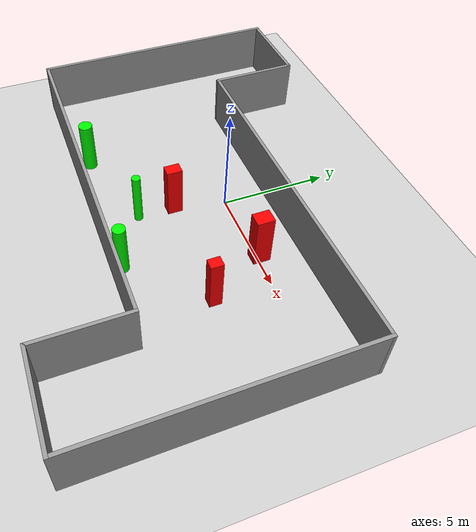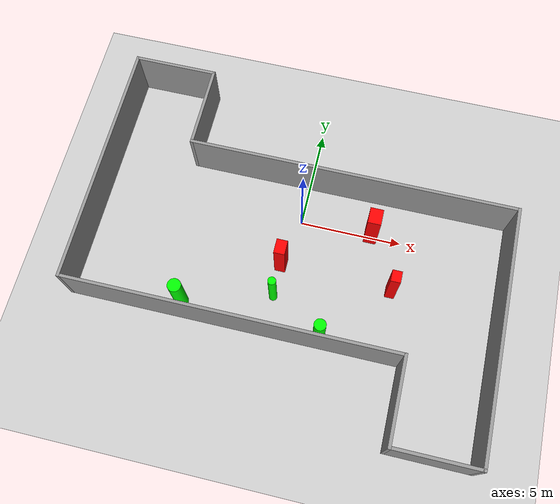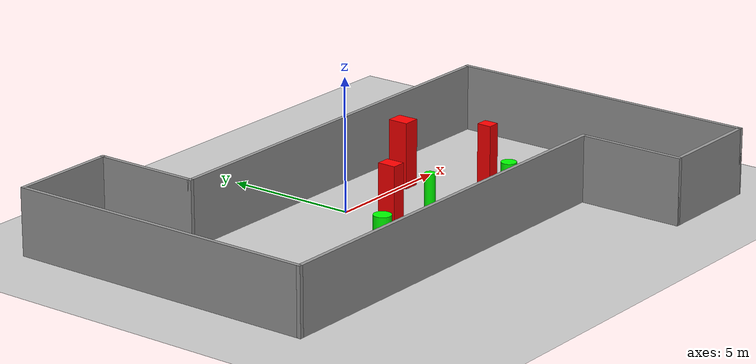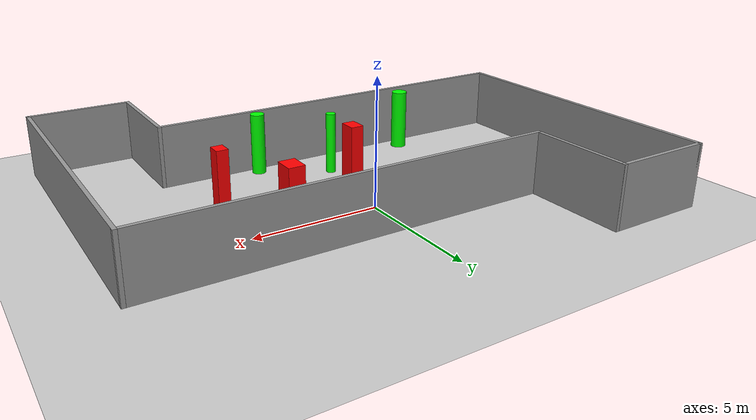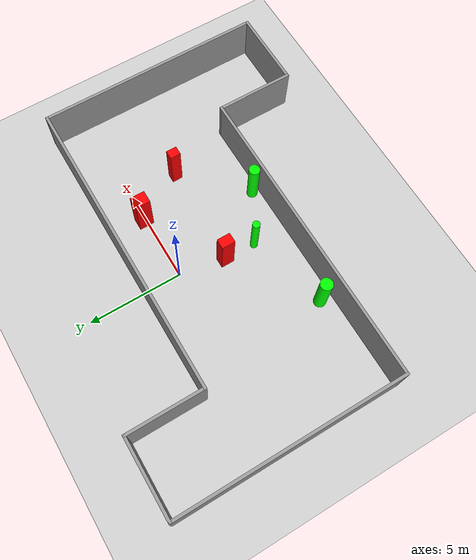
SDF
<sdf version="1.7">
 <world name="default">
  <light name="sun" type="directional">
   <pose>0 0 10 0 -0 0</pose>
   <diffuse>0.8 0.8 0.8 1</diffuse>
   <specular>0.2 0.2 0.2 1</specular>
   <attenuation>
    <range>1000</range>
    <constant>0.9</constant>
    <linear>0.01</linear>
    <quadratic>0.001</quadratic>
   </attenuation>
   <direction>-0.5 0.1 -0.9</direction>
   <spot><inner_angle>0</inner_angle><outer_angle>0</outer_angle><falloff>0</falloff></spot>
  </light>
  <model name="ground_plane">
   <static>1</static>
   <link name="link">
    <collision name="collision">
     <geometry><plane><normal>0 0 1</normal><size>100 100</size></plane></geometry>
     <surface>
      <contact><collide_bitmask>65535</collide_bitmask></contact>
      <friction><ode><mu>100</mu><mu2>50</mu2></ode></friction>
     </surface>
    </collision>
    <visual name="visual">
     <cast_shadows>0</cast_shadows>
     <geometry><plane><normal>0 0 1</normal><size>100 100</size></plane></geometry>
     <material>
      <script><uri>file://media/materials/scripts/gazebo.material</uri><name>Gazebo/Grey</name></script>
     </material>
    </visual>
   </link>
  </model>
  <gravity>0 0 -9.8</gravity>
  <magnetic_field>6e-06 2.3e-05 -4.2e-05</magnetic_field>
  <atmosphere type="adiabatic"/>
  <physics type="ode">
   <max_step_size>0.001</max_step_size>
   <real_time_factor>1</real_time_factor>
   <real_time_update_rate>1000</real_time_update_rate>
  </physics>
  <scene><ambient>0.4 0.4 0.4 1</ambient><background>0.7 0.7 0.7 1</background><shadows>1</shadows></scene>
  <spherical_coordinates>
   <surface_model>EARTH_WGS84</surface_model>
   <latitude_deg>0</latitude_deg>
   <longitude_deg>0</longitude_deg>
   <elevation>0</elevation>
   <heading_deg>0</heading_deg>
  </spherical_coordinates>
  <model name="my_base_walls">
   <link name="Wall_13">
    <collision name="Wall_13_Collision">
     <geometry><box><size>12.15 0.15 2.5</size></box></geometry>
     <pose>0 0 1.25 0 -0 0</pose>
    </collision>
    <visual name="Wall_13_Visual">
     <pose>0 0 1.25 0 -0 0</pose>
     <geometry><box><size>12.15 0.15 2.5</size></box></geometry>
     <material>
      <script><uri>file://media/materials/scripts/gazebo.material</uri><name>Gazebo/Grey</name></script>
      <ambient>1 1 1 1</ambient>
     </material>
     <meta><layer>0</layer></meta>
    </visual>
    <pose>10 -2 0 0 -0 1.5708</pose>
   </link>
   <link name="Wall_15">
    <collision name="Wall_15_Collision">
     <geometry><box><size>16.15 0.15 2.5</size></box></geometry>
     <pose>0 0 1.25 0 -0 0</pose>
    </collision>
    <visual name="Wall_15_Visual">
     <pose>0 0 1.25 0 -0 0</pose>
     <geometry><box><size>16.15 0.15 2.5</size></box></geometry>
     <material>
      <script><uri>file://media/materials/scripts/gazebo.material</uri><name>Gazebo/Grey</name></script>
      <ambient>1 1 1 1</ambient>
     </material>
     <meta><layer>0</layer></meta>
    </visual>
    <pose>2 4 0 0 -0 3.14159</pose>
   </link>
   <link name="Wall_17">
    <collision name="Wall_17_Collision">
     <geometry><box><size>4.15 0.15 2.5</size></box></geometry>
     <pose>0 0 1.25 0 -0 0</pose>
    </collision>
    <visual name="Wall_17_Visual">
     <pose>0 0 1.25 0 -0 0</pose>
     <geometry><box><size>4.15 0.15 2.5</size></box></geometry>
     <material>
      <script><uri>file://media/materials/scripts/gazebo.material</uri><name>Gazebo/Grey</name></script>
      <ambient>1 1 1 1</ambient>
     </material>
     <meta><layer>0</layer></meta>
    </visual>
    <pose>6 -6 0 0 -0 -1.5708</pose>
   </link>
   <link name="Wall_19">
    <collision name="Wall_19_Collision">
     <geometry><box><size>12.15 0.15 2.5</size></box></geometry>
     <pose>0 0 1.25 0 -0 0</pose>
    </collision>
    <visual name="Wall_19_Visual">
     <pose>0 0 1.25 0 -0 0</pose>
     <geometry><box><size>12.15 0.15 2.5</size></box></geometry>
     <material>
      <script><uri>file://media/materials/scripts/gazebo.material</uri><name>Gazebo/Grey</name></script>
      <ambient>1 1 1 1</ambient>
     </material>
     <meta><layer>0</layer></meta>
    </visual>
    <pose>-10 2 0 0 -0 1.5708</pose>
   </link>
   <link name="Wall_21">
    <collision name="Wall_21_Collision">
     <geometry><box><size>4.15 0.15 2.5</size></box></geometry>
     <pose>0 0 1.25 0 -0 0</pose>
    </collision>
    <visual name="Wall_21_Visual">
     <pose>0 0 1.25 0 -0 0</pose>
     <geometry><box><size>4.15 0.15 2.5</size></box></geometry>
     <material>
      <script><uri>file://media/materials/scripts/gazebo.material</uri><name>Gazebo/Grey</name></script>
      <ambient>1 1 1 1</ambient>
     </material>
     <meta><layer>0</layer></meta>
    </visual>
    <pose>-8 8 0 0 -0 0</pose>
   </link>
   <link name="Wall_23">
    <collision name="Wall_23_Collision">
     <geometry><box><size>4.15 0.15 2.5</size></box></geometry>
     <pose>0 0 1.25 0 -0 0</pose>
    </collision>
    <visual name="Wall_23_Visual">
     <pose>0 0 1.25 0 -0 0</pose>
     <geometry><box><size>4.15 0.15 2.5</size></box></geometry>
     <material>
      <script><uri>file://media/materials/scripts/gazebo.material</uri><name>Gazebo/Grey</name></script>
      <ambient>1 1 1 1</ambient>
     </material>
     <meta><layer>0</layer></meta>
    </visual>
    <pose>-6 6 0 0 -0 -1.5708</pose>
   </link>
   <link name="Wall_25">
    <collision name="Wall_25_Collision">
     <geometry><box><size>4.15 0.15 2.5</size></box></geometry>
     <pose>0 0 1.25 0 -0 0</pose>
    </collision>
    <visual name="Wall_25_Visual">
     <pose>0 0 1.25 0 -0 0</pose>
     <geometry><box><size>4.15 0.15 2.5</size></box></geometry>
     <material>
      <script><uri>file://media/materials/scripts/gazebo.material</uri><name>Gazebo/Grey</name></script>
      <ambient>1 1 1 1</ambient>
     </material>
     <meta><layer>0</layer></meta>
    </visual>
    <pose>8 -8 0 0 -0 0</pose>
   </link>
   <link name="Wall_9">
    <collision name="Wall_9_Collision">
     <geometry><box><size>16.15 0.15 2.5</size></box></geometry>
     <pose>0 0 1.25 0 -0 0</pose>
    </collision>
    <visual name="Wall_9_Visual">
     <pose>0 0 1.25 0 -0 0</pose>
     <geometry><box><size>16.15 0.15 2.5</size></box></geometry>
     <material>
      <script><uri>file://media/materials/scripts/gazebo.material</uri><name>Gazebo/Grey</name></script>
      <ambient>1 1 1 1</ambient>
     </material>
     <meta><layer>0</layer></meta>
    </visual>
    <pose>-2 -4 0 0 -0 3.14159</pose>
   </link>
   <static>1</static>
   <pose>-0 -2 0 0 -0 0</pose>
  </model>
  <model name="cylinder1">
   <static>1</static>
   <link name="link">
    <inertial>
     <mass>1</mass>
     <inertia><ixx>0.5</ixx><ixy>0</ixy><ixz>0</ixz><iyy>0.5</iyy><iyz>0</iyz><izz>1</izz></inertia>
    </inertial>
    <collision name="collision">
     <geometry><cylinder><radius>0.32187630275076506</radius><length>2.5</length></cylinder></geometry>
    </collision>
    <visual name="visual">
     <geometry><cylinder><radius>0.32187630275076506</radius><length>2.5</length></cylinder></geometry>
     <material>
      <ambient>0 1 0 1</ambient>
      <diffuse>0 1 0 1</diffuse>
      <specular>0.1 0.1 0.1 1</specular>
      <emissive>0 0 0 0</emissive>
     </material>
    </visual>
   </link>
   <pose>-4.72571753446012 -5.273571466479 1.25 0 0 0</pose>
  </model>
  <model name="cylinder2">
   <static>1</static>
   <link name="link">
    <inertial>
     <mass>1</mass>
     <inertia><ixx>0.5</ixx><ixy>0</ixy><ixz>0</ixz><iyy>0.5</iyy><iyz>0</iyz><izz>1</izz></inertia>
    </inertial>
    <collision name="collision">
     <geometry><cylinder><radius>0.1952252221607153</radius><length>2.5</length></cylinder></geometry>
    </collision>
    <visual name="visual">
     <geometry><cylinder><radius>0.1952252221607153</radius><length>2.5</length></cylinder></geometry>
     <material>
      <ambient>0 1 0 1</ambient>
      <diffuse>0 1 0 1</diffuse>
      <specular>0.1 0.1 0.1 1</specular>
      <emissive>0 0 0 0</emissive>
     </material>
    </visual>
   </link>
   <pose>-0.48793555220051843 -4.070006859196578 1.25 0 0 0</pose>
  </model>
  <model name="cylinder3">
   <static>1</static>
   <link name="link">
    <inertial>
     <mass>1</mass>
     <inertia><ixx>0.5</ixx><ixy>0</ixy><ixz>0</ixz><iyy>0.5</iyy><iyz>0</iyz><izz>1</izz></inertia>
    </inertial>
    <collision name="collision">
     <geometry><cylinder><radius>0.28309105564397974</radius><length>2.5</length></cylinder></geometry>
    </collision>
    <visual name="visual">
     <geometry><cylinder><radius>0.28309105564397974</radius><length>2.5</length></cylinder></geometry>
     <material>
      <ambient>0 1 0 1</ambient>
      <diffuse>0 1 0 1</diffuse>
      <specular>0.1 0.1 0.1 1</specular>
      <emissive>0 0 0 0</emissive>
     </material>
    </visual>
   </link>
   <pose>2.0747963970149073 -5.556418625328042 1.25 0 0 0</pose>
  </model>
  <model name="box1">
   <static>1</static>
   <link name="link">
    <inertial>
     <mass>1</mass>
     <inertia><ixx>0.083</ixx><ixy>0</ixy><ixz>0</ixz><iyy>0.083</iyy><iyz>0</iyz><izz>0.083</izz></inertia>
    </inertial>
    <collision name="collision">
     <geometry><box><size>0.6364680296114581 0.7804992829110452 2.5</size></box></geometry>
    </collision>
    <visual name="visual">
     <geometry><box><size>0.6364680296114581 0.7804992829110452 2.5</size></box></geometry>
     <material>
      <ambient>1 0 0 1</ambient>
      <diffuse>1 0 0 1</diffuse>
      <specular>0.1 0.1 0.1 1</specular>
      <emissive>0 0 0 0</emissive>
     </material>
    </visual>
    <sensor name="my_contact" type="contact">
     <contact><collision>box_collision</collision><topic>__default_topic__</topic></contact>
    </sensor>
   </link>
   <pose>3.493537627225532 0.1190276076990413 1.25 0 0 0</pose>
  </model>
  <model name="box2">
   <static>1</static>
   <link name="link">
    <inertial>
     <mass>1</mass>
     <inertia><ixx>0.083</ixx><ixy>0</ixy><ixz>0</ixz><iyy>0.083</iyy><iyz>0</iyz><izz>0.083</izz></inertia>
    </inertial>
    <collision name="collision">
     <geometry><box><size>0.46372914709558305 0.5523623553627599 2.5</size></box></geometry>
    </collision>
    <visual name="visual">
     <geometry><box><size>0.46372914709558305 0.5523623553627599 2.5</size></box></geometry>
     <material>
      <ambient>1 0 0 1</ambient>
      <diffuse>1 0 0 1</diffuse>
      <specular>0.1 0.1 0.1 1</specular>
      <emissive>0 0 0 0</emissive>
     </material>
    </visual>
    <sensor name="my_contact" type="contact">
     <contact><collision>box_collision</collision><topic>__default_topic__</topic></contact>
    </sensor>
   </link>
   <pose>4.967162810202085 -2.5679812805413382 1.25 0 0 0</pose>
  </model>
  <model name="box3">
   <static>1</static>
   <link name="link">
    <inertial>
     <mass>1</mass>
     <inertia><ixx>0.083</ixx><ixy>0</ixy><ixz>0</ixz><iyy>0.083</iyy><iyz>0</iyz><izz>0.083</izz></inertia>
    </inertial>
    <collision name="collision">
     <geometry><box><size>0.5232116705759863 0.7001613895586694 2.5</size></box></geometry>
    </collision>
    <visual name="visual">
     <geometry><box><size>0.5232116705759863 0.7001613895586694 2.5</size></box></geometry>
     <material>
      <ambient>1 0 0 1</ambient>
      <diffuse>1 0 0 1</diffuse>
      <specular>0.1 0.1 0.1 1</specular>
      <emissive>0 0 0 0</emissive>
     </material>
    </visual>
    <sensor name="my_contact" type="contact">
     <contact><collision>box_collision</collision><topic>__default_topic__</topic></contact>
    </sensor>
   </link>
   <pose>-0.4828613086678608 -2.379424385760184 1.25 0 0 0</pose>
  </model>
 </world>
</sdf>
